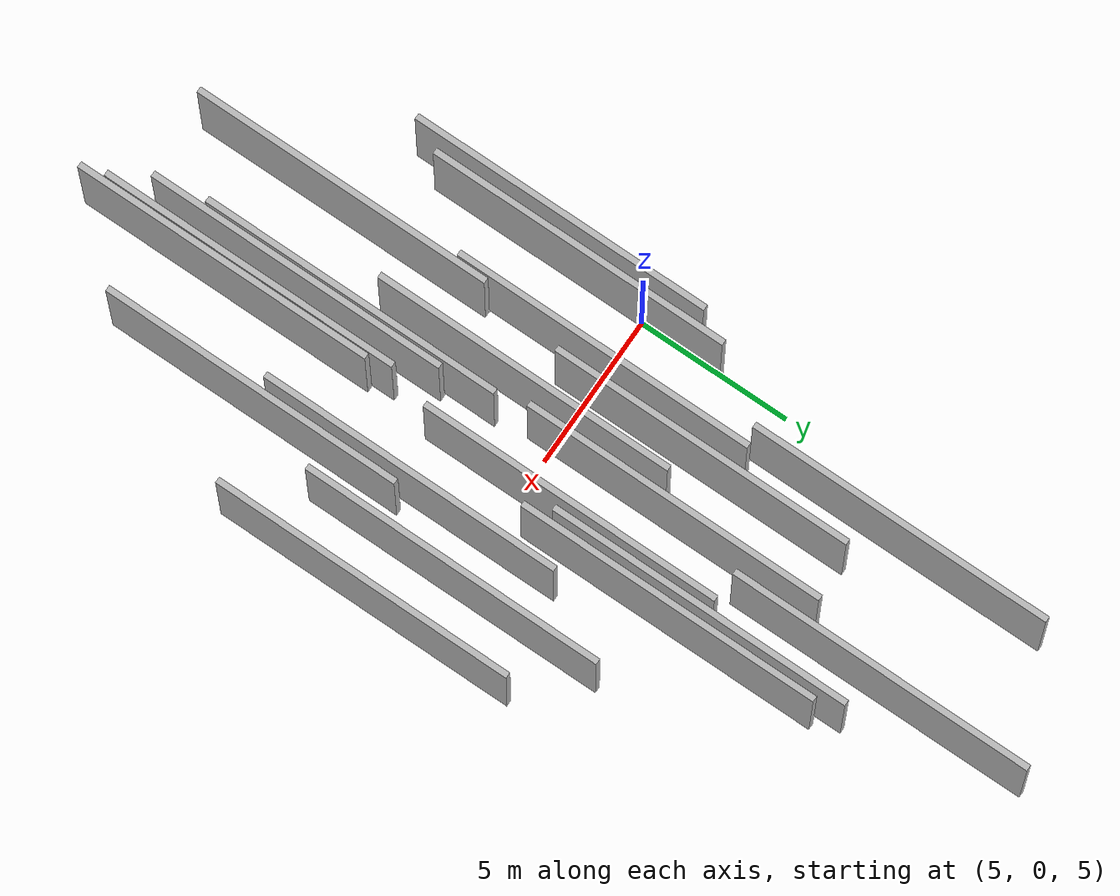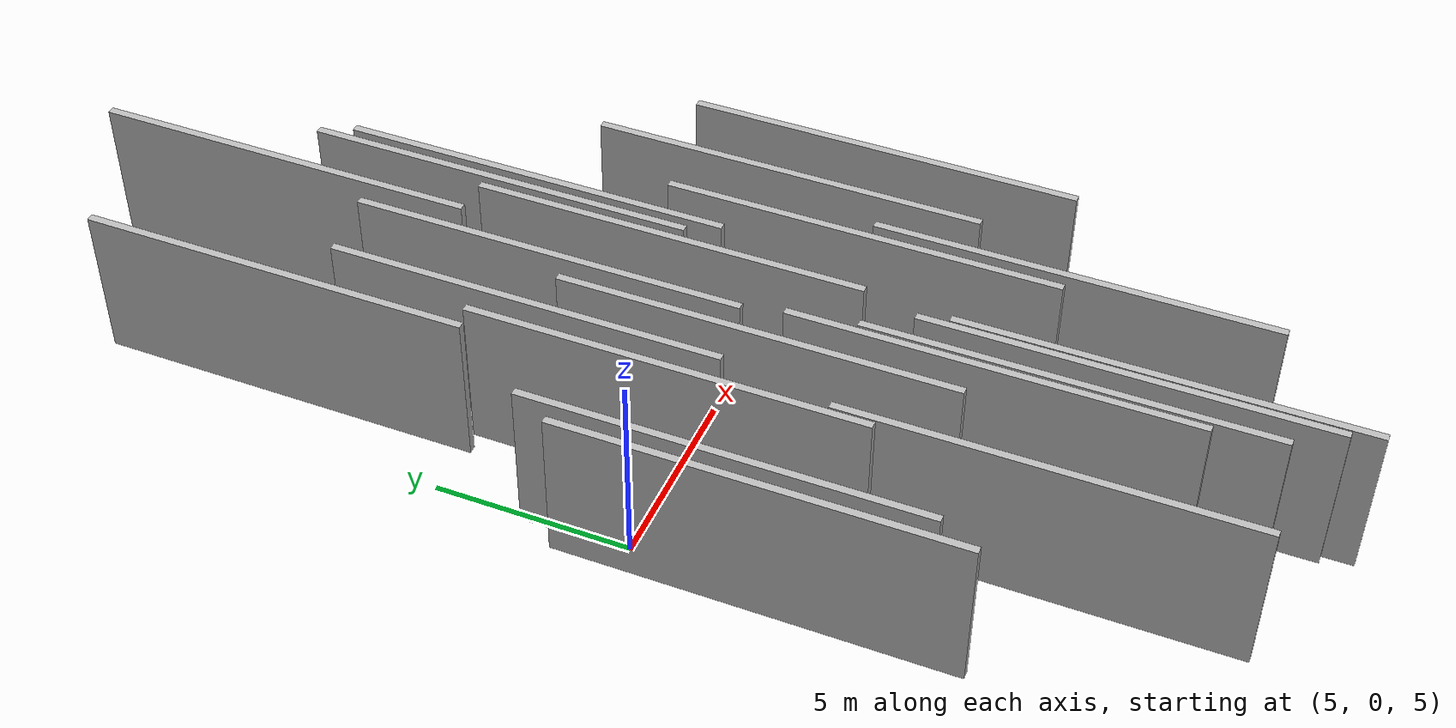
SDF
<sdf version="1.6">
 <world name="default">
  <scene>
   <sky><clouds><speed>12</speed></clouds></sky>
   <ambient>0.4 0.4 0.4 1</ambient>
   <background>0.7 0.7 0.7 1</background>
   <shadows>1</shadows>
  </scene>
  <gravity>0 0 -9.8066</gravity>
  <magnetic_field>6e-06 2.3e-05 -4.2e-05</magnetic_field>
  <physics default="0" name="default_physics" type="ode">
   <ode>
    <solver>
     <type>quick</type>
     <iters>10</iters>
     <sor>1.0</sor>
     <use_dynamic_moi_rescaling>0</use_dynamic_moi_rescaling>
    </solver>
    <constraints>
     <cfm>0</cfm>
     <erp>0.2</erp>
     <contact_max_correcting_vel>100</contact_max_correcting_vel>
     <contact_surface_layer>0.001</contact_surface_layer>
    </constraints>
   </ode>
   <max_step_size>0.004</max_step_size>
   <real_time_factor>1</real_time_factor>
   <real_time_update_rate>250</real_time_update_rate>
  </physics>
  <light name="sun" type="directional">
   <pose>0 0 10 0 0 0</pose>
   <diffuse>0.8 0.8 0.8 1</diffuse>
   <specular>0.2 0.2 0.2 1</specular>
   <attenuation>
    <range>1000</range>
    <constant>0.9</constant>
    <linear>0.01</linear>
    <quadratic>0.001</quadratic>
   </attenuation>
   <direction>-0.5 0.1 -0.9</direction>
  </light>
  <model name="grey_wall_1">
   <static>1</static>
   <pose>10.3235 11.7406 5.0 0.000000 0.000000 1.570796</pose>
   <link name="link">
    <pose>0 0 2.00 0 0 0</pose>
    <collision name="collision"><geometry><box><size>10.00 0.2 4.00</size></box></geometry></collision>
    <visual name="visual">
     <cast_shadows>0</cast_shadows>
     <geometry><box><size>10.00 0.2 4.00</size></box></geometry>
     <material>
      <script>
       <uri>model://HANNAS_wall/materials/scripts</uri>
       <uri>model://HANNAS_wall/materials/textures</uri>
       <name>vrc/HANNAS_wall</name>
      </script>
     </material>
    </visual>
   </link>
  </model>
  <model name="grey_wall_2">
   <static>1</static>
   <pose>13.1271 -2.4733 5.0 0.000000 0.000000 1.570796</pose>
   <link name="link">
    <pose>0 0 2.00 0 0 0</pose>
    <collision name="collision"><geometry><box><size>10.00 0.2 4.00</size></box></geometry></collision>
    <visual name="visual">
     <cast_shadows>0</cast_shadows>
     <geometry><box><size>10.00 0.2 4.00</size></box></geometry>
     <material>
      <script>
       <uri>model://HANNAS_wall/materials/scripts</uri>
       <uri>model://HANNAS_wall/materials/textures</uri>
       <name>vrc/HANNAS_wall</name>
      </script>
     </material>
    </visual>
   </link>
  </model>
  <model name="grey_wall_3">
   <static>1</static>
   <pose>11.2702 1.7563 5.0 0.000000 0.000000 1.570796</pose>
   <link name="link">
    <pose>0 0 2.00 0 0 0</pose>
    <collision name="collision"><geometry><box><size>10.00 0.2 4.00</size></box></geometry></collision>
    <visual name="visual">
     <cast_shadows>0</cast_shadows>
     <geometry><box><size>10.00 0.2 4.00</size></box></geometry>
     <material>
      <script>
       <uri>model://HANNAS_wall/materials/scripts</uri>
       <uri>model://HANNAS_wall/materials/textures</uri>
       <name>vrc/HANNAS_wall</name>
      </script>
     </material>
    </visual>
   </link>
  </model>
  <model name="grey_wall_4">
   <static>1</static>
   <pose>10.1074 -8.5069 5.0 0.000000 0.000000 1.570796</pose>
   <link name="link">
    <pose>0 0 2.00 0 0 0</pose>
    <collision name="collision"><geometry><box><size>10.00 0.2 4.00</size></box></geometry></collision>
    <visual name="visual">
     <cast_shadows>0</cast_shadows>
     <geometry><box><size>10.00 0.2 4.00</size></box></geometry>
     <material>
      <script>
       <uri>model://HANNAS_wall/materials/scripts</uri>
       <uri>model://HANNAS_wall/materials/textures</uri>
       <name>vrc/HANNAS_wall</name>
      </script>
     </material>
    </visual>
   </link>
  </model>
  <model name="grey_wall_5">
   <static>1</static>
   <pose>7.0733 0.0275 5.0 0.000000 0.000000 1.570796</pose>
   <link name="link">
    <pose>0 0 2.00 0 0 0</pose>
    <collision name="collision"><geometry><box><size>10.00 0.2 4.00</size></box></geometry></collision>
    <visual name="visual">
     <cast_shadows>0</cast_shadows>
     <geometry><box><size>10.00 0.2 4.00</size></box></geometry>
     <material>
      <script>
       <uri>model://HANNAS_wall/materials/scripts</uri>
       <uri>model://HANNAS_wall/materials/textures</uri>
       <name>vrc/HANNAS_wall</name>
      </script>
     </material>
    </visual>
   </link>
  </model>
  <model name="grey_wall_6">
   <static>1</static>
   <pose>4.9862 -2.2468 5.0 0.000000 0.000000 1.570796</pose>
   <link name="link">
    <pose>0 0 2.00 0 0 0</pose>
    <collision name="collision"><geometry><box><size>10.00 0.2 4.00</size></box></geometry></collision>
    <visual name="visual">
     <cast_shadows>0</cast_shadows>
     <geometry><box><size>10.00 0.2 4.00</size></box></geometry>
     <material>
      <script>
       <uri>model://HANNAS_wall/materials/scripts</uri>
       <uri>model://HANNAS_wall/materials/textures</uri>
       <name>vrc/HANNAS_wall</name>
      </script>
     </material>
    </visual>
   </link>
  </model>
  <model name="grey_wall_7">
   <static>1</static>
   <pose>9.5884 4.1789 5.0 0.000000 0.000000 1.570796</pose>
   <link name="link">
    <pose>0 0 2.00 0 0 0</pose>
    <collision name="collision"><geometry><box><size>10.00 0.2 4.00</size></box></geometry></collision>
    <visual name="visual">
     <cast_shadows>0</cast_shadows>
     <geometry><box><size>10.00 0.2 4.00</size></box></geometry>
     <material>
      <script>
       <uri>model://HANNAS_wall/materials/scripts</uri>
       <uri>model://HANNAS_wall/materials/textures</uri>
       <name>vrc/HANNAS_wall</name>
      </script>
     </material>
    </visual>
   </link>
  </model>
  <model name="grey_wall_8">
   <static>1</static>
   <pose>13.6005 -7.6296 5.0 0.000000 0.000000 1.570796</pose>
   <link name="link">
    <pose>0 0 2.00 0 0 0</pose>
    <collision name="collision"><geometry><box><size>10.00 0.2 4.00</size></box></geometry></collision>
    <visual name="visual">
     <cast_shadows>0</cast_shadows>
     <geometry><box><size>10.00 0.2 4.00</size></box></geometry>
     <material>
      <script>
       <uri>model://HANNAS_wall/materials/scripts</uri>
       <uri>model://HANNAS_wall/materials/textures</uri>
       <name>vrc/HANNAS_wall</name>
      </script>
     </material>
    </visual>
   </link>
  </model>
  <model name="grey_wall_9">
   <static>1</static>
   <pose>11.6749 6.4782 5.0 0.000000 0.000000 1.570796</pose>
   <link name="link">
    <pose>0 0 2.00 0 0 0</pose>
    <collision name="collision"><geometry><box><size>10.00 0.2 4.00</size></box></geometry></collision>
    <visual name="visual">
     <cast_shadows>0</cast_shadows>
     <geometry><box><size>10.00 0.2 4.00</size></box></geometry>
     <material>
      <script>
       <uri>model://HANNAS_wall/materials/scripts</uri>
       <uri>model://HANNAS_wall/materials/textures</uri>
       <name>vrc/HANNAS_wall</name>
      </script>
     </material>
    </visual>
   </link>
  </model>
  <model name="grey_wall_10">
   <static>1</static>
   <pose>8.8952 -1.4643 5.0 0.000000 0.000000 1.570796</pose>
   <link name="link">
    <pose>0 0 2.00 0 0 0</pose>
    <collision name="collision"><geometry><box><size>10.00 0.2 4.00</size></box></geometry></collision>
    <visual name="visual">
     <cast_shadows>0</cast_shadows>
     <geometry><box><size>10.00 0.2 4.00</size></box></geometry>
     <material>
      <script>
       <uri>model://HANNAS_wall/materials/scripts</uri>
       <uri>model://HANNAS_wall/materials/textures</uri>
       <name>vrc/HANNAS_wall</name>
      </script>
     </material>
    </visual>
   </link>
  </model>
  <model name="grey_wall_11">
   <static>1</static>
   <pose>9.8429 -6.7960 5.0 0.000000 0.000000 1.570796</pose>
   <link name="link">
    <pose>0 0 2.00 0 0 0</pose>
    <collision name="collision"><geometry><box><size>10.00 0.2 4.00</size></box></geometry></collision>
    <visual name="visual">
     <cast_shadows>0</cast_shadows>
     <geometry><box><size>10.00 0.2 4.00</size></box></geometry>
     <material>
      <script>
       <uri>model://HANNAS_wall/materials/scripts</uri>
       <uri>model://HANNAS_wall/materials/textures</uri>
       <name>vrc/HANNAS_wall</name>
      </script>
     </material>
    </visual>
   </link>
  </model>
  <model name="grey_wall_12">
   <static>1</static>
   <pose>14.6608 0.0371 5.0 0.000000 0.000000 1.570796</pose>
   <link name="link">
    <pose>0 0 2.00 0 0 0</pose>
    <collision name="collision"><geometry><box><size>10.00 0.2 4.00</size></box></geometry></collision>
    <visual name="visual">
     <cast_shadows>0</cast_shadows>
     <geometry><box><size>10.00 0.2 4.00</size></box></geometry>
     <material>
      <script>
       <uri>model://HANNAS_wall/materials/scripts</uri>
       <uri>model://HANNAS_wall/materials/textures</uri>
       <name>vrc/HANNAS_wall</name>
      </script>
     </material>
    </visual>
   </link>
  </model>
  <model name="grey_wall_13">
   <static>1</static>
   <pose>4.4382 -3.2554 5.0 0.000000 0.000000 1.570796</pose>
   <link name="link">
    <pose>0 0 2.00 0 0 0</pose>
    <collision name="collision"><geometry><box><size>10.00 0.2 4.00</size></box></geometry></collision>
    <visual name="visual">
     <cast_shadows>0</cast_shadows>
     <geometry><box><size>10.00 0.2 4.00</size></box></geometry>
     <material>
      <script>
       <uri>model://HANNAS_wall/materials/scripts</uri>
       <uri>model://HANNAS_wall/materials/textures</uri>
       <name>vrc/HANNAS_wall</name>
      </script>
     </material>
    </visual>
   </link>
  </model>
  <model name="grey_wall_14">
   <static>1</static>
   <pose>12.0910 5.6790 5.0 0.000000 0.000000 1.570796</pose>
   <link name="link">
    <pose>0 0 2.00 0 0 0</pose>
    <collision name="collision"><geometry><box><size>10.00 0.2 4.00</size></box></geometry></collision>
    <visual name="visual">
     <cast_shadows>0</cast_shadows>
     <geometry><box><size>10.00 0.2 4.00</size></box></geometry>
     <material>
      <script>
       <uri>model://HANNAS_wall/materials/scripts</uri>
       <uri>model://HANNAS_wall/materials/textures</uri>
       <name>vrc/HANNAS_wall</name>
      </script>
     </material>
    </visual>
   </link>
  </model>
  <model name="grey_wall_15">
   <static>1</static>
   <pose>16.4205 -1.8314 5.0 0.000000 0.000000 1.570796</pose>
   <link name="link">
    <pose>0 0 2.00 0 0 0</pose>
    <collision name="collision"><geometry><box><size>10.00 0.2 4.00</size></box></geometry></collision>
    <visual name="visual">
     <cast_shadows>0</cast_shadows>
     <geometry><box><size>10.00 0.2 4.00</size></box></geometry>
     <material>
      <script>
       <uri>model://HANNAS_wall/materials/scripts</uri>
       <uri>model://HANNAS_wall/materials/textures</uri>
       <name>vrc/HANNAS_wall</name>
      </script>
     </material>
    </visual>
   </link>
  </model>
  <model name="grey_wall_16">
   <static>1</static>
   <pose>10.8416 -9.6292 5.0 0.000000 0.000000 1.570796</pose>
   <link name="link">
    <pose>0 0 2.00 0 0 0</pose>
    <collision name="collision"><geometry><box><size>10.00 0.2 4.00</size></box></geometry></collision>
    <visual name="visual">
     <cast_shadows>0</cast_shadows>
     <geometry><box><size>10.00 0.2 4.00</size></box></geometry>
     <material>
      <script>
       <uri>model://HANNAS_wall/materials/scripts</uri>
       <uri>model://HANNAS_wall/materials/textures</uri>
       <name>vrc/HANNAS_wall</name>
      </script>
     </material>
    </visual>
   </link>
  </model>
  <model name="grey_wall_17">
   <static>1</static>
   <pose>7.3186 -8.8580 5.0 0.000000 0.000000 1.570796</pose>
   <link name="link">
    <pose>0 0 2.00 0 0 0</pose>
    <collision name="collision"><geometry><box><size>10.00 0.2 4.00</size></box></geometry></collision>
    <visual name="visual">
     <cast_shadows>0</cast_shadows>
     <geometry><box><size>10.00 0.2 4.00</size></box></geometry>
     <material>
      <script>
       <uri>model://HANNAS_wall/materials/scripts</uri>
       <uri>model://HANNAS_wall/materials/textures</uri>
       <name>vrc/HANNAS_wall</name>
      </script>
     </material>
    </visual>
   </link>
  </model>
  <model name="grey_wall_18">
   <static>1</static>
   <pose>7.8093 3.9134 5.0 0.000000 0.000000 1.570796</pose>
   <link name="link">
    <pose>0 0 2.00 0 0 0</pose>
    <collision name="collision"><geometry><box><size>10.00 0.2 4.00</size></box></geometry></collision>
    <visual name="visual">
     <cast_shadows>0</cast_shadows>
     <geometry><box><size>10.00 0.2 4.00</size></box></geometry>
     <material>
      <script>
       <uri>model://HANNAS_wall/materials/scripts</uri>
       <uri>model://HANNAS_wall/materials/textures</uri>
       <name>vrc/HANNAS_wall</name>
      </script>
     </material>
    </visual>
   </link>
  </model>
  <model name="grey_wall_19">
   <static>1</static>
   <pose>11.0723 -10.3950 5.0 0.000000 0.000000 1.570796</pose>
   <link name="link">
    <pose>0 0 2.00 0 0 0</pose>
    <collision name="collision"><geometry><box><size>10.00 0.2 4.00</size></box></geometry></collision>
    <visual name="visual">
     <cast_shadows>0</cast_shadows>
     <geometry><box><size>10.00 0.2 4.00</size></box></geometry>
     <material>
      <script>
       <uri>model://HANNAS_wall/materials/scripts</uri>
       <uri>model://HANNAS_wall/materials/textures</uri>
       <name>vrc/HANNAS_wall</name>
      </script>
     </material>
    </visual>
   </link>
  </model>
  <model name="grey_wall_20">
   <static>1</static>
   <pose>6.4788 9.8083 5.0 0.000000 0.000000 1.570796</pose>
   <link name="link">
    <pose>0 0 2.00 0 0 0</pose>
    <collision name="collision"><geometry><box><size>10.00 0.2 4.00</size></box></geometry></collision>
    <visual name="visual">
     <cast_shadows>0</cast_shadows>
     <geometry><box><size>10.00 0.2 4.00</size></box></geometry>
     <material>
      <script>
       <uri>model://HANNAS_wall/materials/scripts</uri>
       <uri>model://HANNAS_wall/materials/textures</uri>
       <name>vrc/HANNAS_wall</name>
      </script>
     </material>
    </visual>
   </link>
  </model>
 </world>
</sdf>
